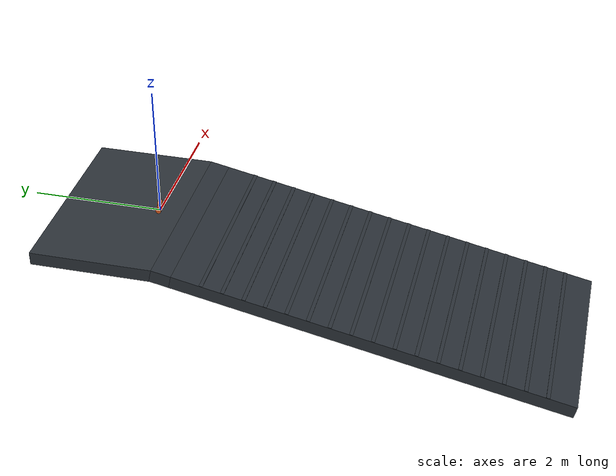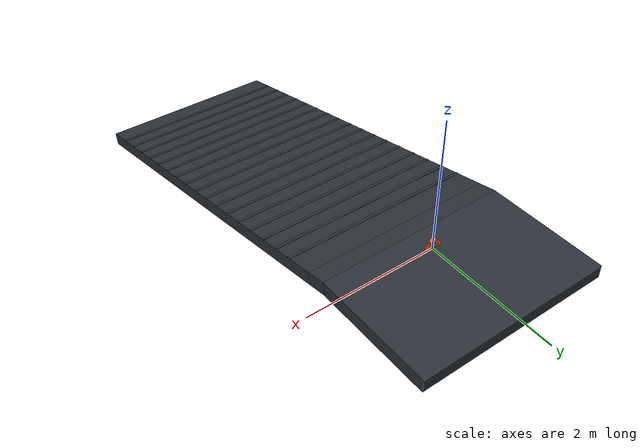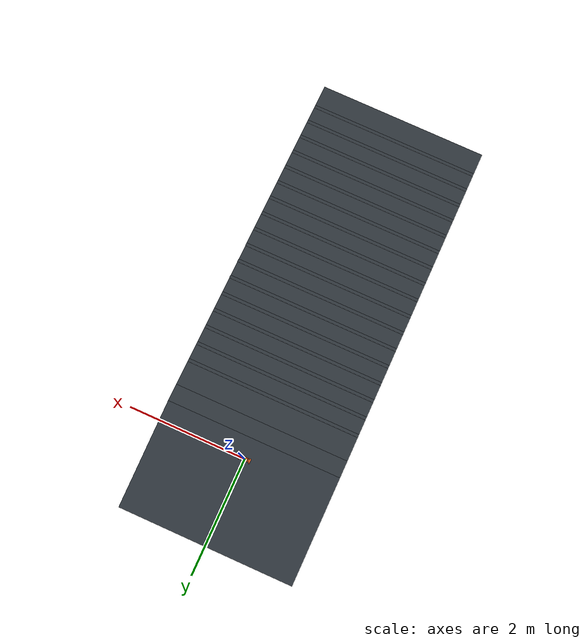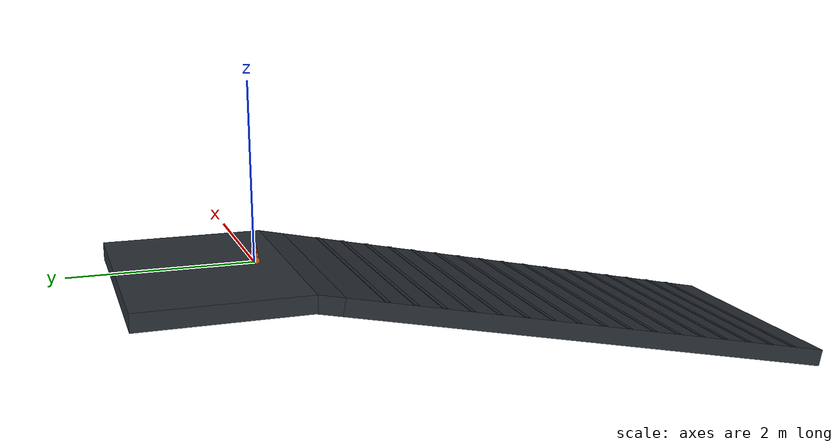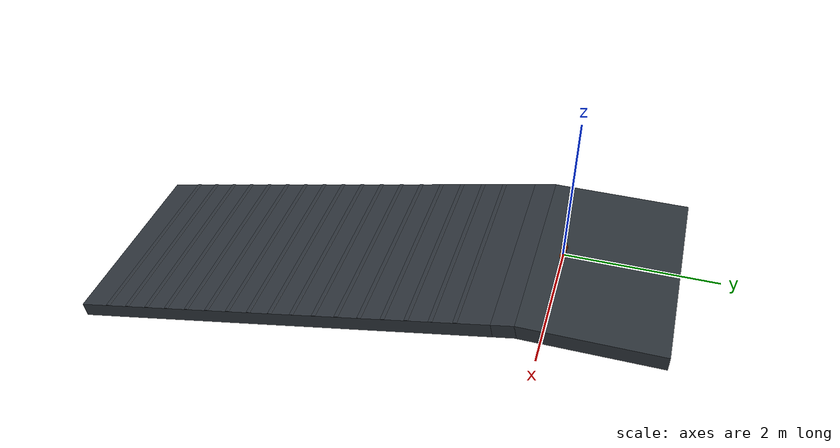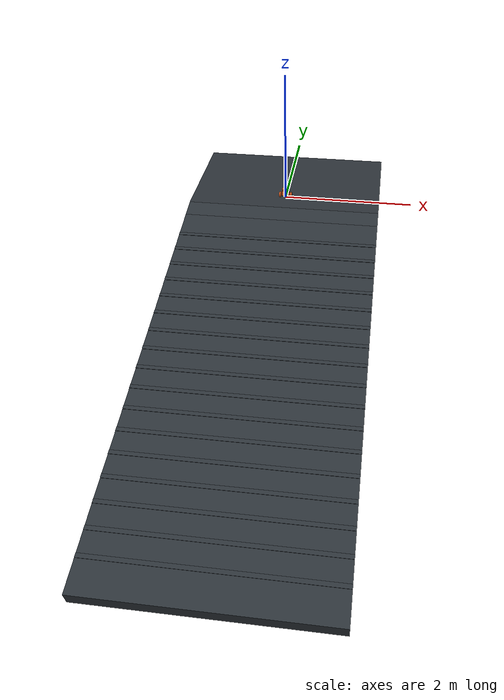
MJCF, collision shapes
<mujoco model="Stage4B rbase_ep_022_train_m12p0">
  <compiler angle="radian" meshdir="../../../../assets/upstream_local" />
  <option timestep="0.001" integrator="implicitfast" gravity="0 0 -9.81" />
  <statistic center="0 0 0.05" extent="0.28" />
  <default>
    <default class="visual">
      <geom contype="0" conaffinity="0" group="2" />
    </default>
    <default class="collision">
      <geom group="3" rgba="0.85 0.35 0.12 0.25" solref="0.005 1" solimp="0.9 0.95 0.001" />
    </default>
  </default>
  <asset>
    <texture name="ground_tex" type="2d" builtin="checker" rgb1="0.22 0.25 0.28" rgb2="0.12 0.14 0.16" width="256" height="256" />
    <material name="ground_mat" texture="ground_tex" texrepeat="4 4" reflectance="0.15" />
    <mesh name="main_frame_mesh" file="main_frame.stl" scale="0.001 0.001 0.001" />
    <mesh name="wheel_base_mesh" file="wheel_base.stl" scale="0.001 0.001 0.001" />
    <mesh name="cover_mesh" file="cover.stl" scale="0.001 0.001 0.001" />
    <mesh name="motor_left_mesh" file="motor_left.stl" scale="0.001 0.001 0.001" />
    <mesh name="motor_right_mesh" file="motor_right.stl" scale="0.001 0.001 0.001" />
    <mesh name="mc33926_mesh" file="mc33926.stl" scale="0.001 0.001 0.001" />
    <mesh name="wheel_mesh" file="wheel.stl" scale="0.001 0.001 0.001" />
    <mesh name="adapter_left_mesh" file="adapter_left.stl" scale="0.001 0.001 0.001" />
    <mesh name="adapter_right_mesh" file="adapter_right.stl" scale="0.001 0.001 0.001" />
  </asset>
  <worldbody>
    <light pos="0 -0.5 0.8" dir="0 0.6 -1" diffuse="0.8 0.8 0.8" />
    <geom name="terrain_flat" type="box" pos="0 0.575 -0.1" size="1.5 0.925 0.1" material="ground_mat" friction="1 0.005 0.0001" condim="3" />
    <geom name="terrain_transition" type="box" pos="0 -0.475930971028 -0.129001513696" euler="0.209439510239 0 0" size="1.5 0.15 0.1" material="ground_mat" friction="1 0.005 0.0001" condim="3" />
    <geom name="terrain_constant_grade" type="box" pos="0 -3.55709591334 -0.783923339772" euler="0.209439510239 0 0" size="1.5 3 0.1" material="ground_mat" friction="1 0.005 0.0001" condim="3" />
    <geom name="terrain_rough_00" type="box" pos="0 -1.08423443562 -0.152999325311" euler="0.209439510239 0 0" size="1.5 0.0275 0.003" material="ground_mat" friction="1 0.005 0.0001" condim="3" />
    <geom name="terrain_rough_01" type="box" pos="0 -1.39724166786 -0.219531066373" euler="0.209439510239 0 0" size="1.5 0.0275 0.003" material="ground_mat" friction="1 0.005 0.0001" condim="3" />
    <geom name="terrain_rough_02" type="box" pos="0 -1.71024890009 -0.286062807434" euler="0.209439510239 0 0" size="1.5 0.0275 0.003" material="ground_mat" friction="1 0.005 0.0001" condim="3" />
    <geom name="terrain_rough_03" type="box" pos="0 -2.02325613233 -0.352594548496" euler="0.209439510239 0 0" size="1.5 0.0275 0.003" material="ground_mat" friction="1 0.005 0.0001" condim="3" />
    <geom name="terrain_rough_04" type="box" pos="0 -2.33626336456 -0.419126289558" euler="0.209439510239 0 0" size="1.5 0.0275 0.003" material="ground_mat" friction="1 0.005 0.0001" condim="3" />
    <geom name="terrain_rough_05" type="box" pos="0 -2.6492705968 -0.48565803062" euler="0.209439510239 0 0" size="1.5 0.0275 0.003" material="ground_mat" friction="1 0.005 0.0001" condim="3" />
    <geom name="terrain_rough_06" type="box" pos="0 -2.96227782903 -0.552189771681" euler="0.209439510239 0 0" size="1.5 0.0275 0.003" material="ground_mat" friction="1 0.005 0.0001" condim="3" />
    <geom name="terrain_rough_07" type="box" pos="0 -3.27528506127 -0.618721512743" euler="0.209439510239 0 0" size="1.5 0.0275 0.003" material="ground_mat" friction="1 0.005 0.0001" condim="3" />
    <geom name="terrain_rough_08" type="box" pos="0 -3.5882922935 -0.685253253805" euler="0.209439510239 0 0" size="1.5 0.0275 0.003" material="ground_mat" friction="1 0.005 0.0001" condim="3" />
    <geom name="terrain_rough_09" type="box" pos="0 -3.90129952574 -0.751784994866" euler="0.209439510239 0 0" size="1.5 0.0275 0.003" material="ground_mat" friction="1 0.005 0.0001" condim="3" />
    <geom name="terrain_rough_10" type="box" pos="0 -4.21430675797 -0.818316735928" euler="0.209439510239 0 0" size="1.5 0.0275 0.003" material="ground_mat" friction="1 0.005 0.0001" condim="3" />
    <geom name="terrain_rough_11" type="box" pos="0 -4.52731399021 -0.88484847699" euler="0.209439510239 0 0" size="1.5 0.0275 0.003" material="ground_mat" friction="1 0.005 0.0001" condim="3" />
    <geom name="terrain_rough_12" type="box" pos="0 -4.84032122244 -0.951380218051" euler="0.209439510239 0 0" size="1.5 0.0275 0.003" material="ground_mat" friction="1 0.005 0.0001" condim="3" />
    <geom name="terrain_rough_13" type="box" pos="0 -5.15332845468 -1.01791195911" euler="0.209439510239 0 0" size="1.5 0.0275 0.003" material="ground_mat" friction="1 0.005 0.0001" condim="3" />
    <geom name="terrain_rough_14" type="box" pos="0 -5.46633568691 -1.08444370017" euler="0.209439510239 0 0" size="1.5 0.0275 0.003" material="ground_mat" friction="1 0.005 0.0001" condim="3" />
    <geom name="terrain_rough_15" type="box" pos="0 -5.77934291915 -1.15097544124" euler="0.209439510239 0 0" size="1.5 0.0275 0.003" material="ground_mat" friction="1 0.005 0.0001" condim="3" />
    <geom name="terrain_rough_16" type="box" pos="0 -6.09235015138 -1.2175071823" euler="0.209439510239 0 0" size="1.5 0.0275 0.003" material="ground_mat" friction="1 0.005 0.0001" condim="3" />
    <body name="chassis" pos="0 0 0.043">
      <freejoint name="root" />
      <inertial pos="0.0001592717873 -0.001394466535 0.03368627387" mass="0.8173706489" fullinertia="0.0009508052638 0.001636345835 0.0009938057434 -1.163464906e-07 -4.840496598e-06 3.454944565e-05" />
      <geom name="main_frame_visual" class="visual" type="mesh" mesh="main_frame_mesh" rgba="0.12 0.42 0.72 1" />
      <geom name="wheel_base_visual" class="visual" type="mesh" mesh="wheel_base_mesh" rgba="0.95 0.50 0.10 1" />
      <geom name="cover_visual" class="visual" type="mesh" mesh="cover_mesh" rgba="0.18 0.72 0.32 0.72" />
      <geom name="motor_left_visual" class="visual" type="mesh" mesh="motor_left_mesh" rgba="0.45 0.47 0.50 1" />
      <geom name="motor_right_visual" class="visual" type="mesh" mesh="motor_right_mesh" rgba="0.45 0.47 0.50 1" />
      <geom name="mc33926_visual" class="visual" type="mesh" mesh="mc33926_mesh" rgba="0.08 0.36 0.18 1" />
      <geom name="battery_1_visual" class="visual" type="box" pos="0 -0.012 0.038" size="0.035 0.007 0.025" rgba="0.15 0.25 0.75 1" />
      <geom name="battery_2_visual" class="visual" type="box" pos="0 0.012 0.038" size="0.035 0.007 0.025" rgba="0.15 0.25 0.75 1" />
      <geom name="electronics_lump_visual" class="visual" type="box" pos="0 -0.024 0.067" size="0.035 0.006 0.0425" rgba="0.10 0.42 0.20 0.65" />
      <geom name="wheel_base_collision" class="collision" type="box" pos="0 0.0005 0.0042" size="0.074 0.0201 0.0198" />
      <geom name="lower_chassis_collision" class="collision" type="box" pos="0.001 -0.0015 0.038" size="0.0595 0.0325 0.038" />
      <geom name="upper_chassis_collision" class="collision" type="capsule" fromto="-0.024 -0.0015 0.096 0.026 -0.0015 0.096" size="0.033" />
      <site name="imu_site" type="box" pos="0 0 0.020" quat="1 0 0 0" size="0.004 0.003 0.001" rgba="1 0.15 0.05 1" />
      <body name="left_wheel" pos="-0.0885 0 0">
        <joint name="left_wheel_hinge" type="hinge" axis="1 0 0" damping="0.002" frictionloss="0.002" />
        <inertial pos="0.001407549168 -2.310217342e-08 4.024972882e-05" mass="0.1051" fullinertia="8.559060347e-05 4.760138372e-05 4.763051958e-05 2.677568832e-11 -3.525425309e-08 -1.463149106e-11" />
        <geom name="left_wheel_visual" class="visual" type="mesh" mesh="wheel_mesh" rgba="0.04 0.05 0.06 1" />
        <geom name="left_adapter_visual" class="visual" type="mesh" mesh="adapter_left_mesh" rgba="0.12 0.48 0.82 1" />
        <geom name="left_wheel_collision" class="collision" type="cylinder" size="0.042 0.012" quat="0.7071067812 0 0.7071067812 0" friction="1 0.005 0.0001" />
      </body>
      <body name="right_wheel" pos="0.0885 0 0">
        <joint name="right_wheel_hinge" type="hinge" axis="1 0 0" damping="0.002" frictionloss="0.002" />
        <inertial pos="-0.001407437868 -2.310217342e-08 -4.019113045e-05" mass="0.1051" fullinertia="8.559060397e-05 4.760141714e-05 4.763055251e-05 -2.601653908e-11 -3.526339188e-08 1.57007511e-11" />
        <geom name="right_wheel_visual" class="visual" type="mesh" mesh="wheel_mesh" rgba="0.04 0.05 0.06 1" />
        <geom name="right_adapter_visual" class="visual" type="mesh" mesh="adapter_right_mesh" rgba="0.12 0.48 0.82 1" />
        <geom name="right_wheel_collision" class="collision" type="cylinder" size="0.042 0.012" quat="0.7071067812 0 0.7071067812 0" friction="1 0.005 0.0001" />
      </body>
    </body>
  </worldbody>
  <actuator>
    <motor name="left_wheel_torque" joint="left_wheel_hinge" gear="1" ctrllimited="true" ctrlrange="-0.63 0.63" forcelimited="true" forcerange="-0.63 0.63" />
    <motor name="right_wheel_torque" joint="right_wheel_hinge" gear="1" ctrllimited="true" ctrlrange="-0.63 0.63" forcelimited="true" forcerange="-0.63 0.63" />
  </actuator>
  <sensor>
    <accelerometer name="imu_accelerometer" site="imu_site" />
    <gyro name="imu_gyro" site="imu_site" />
    <jointpos name="left_wheel_angle" joint="left_wheel_hinge" />
    <jointpos name="right_wheel_angle" joint="right_wheel_hinge" />
  </sensor>
  <keyframe>
    <key name="upright" qpos="0 0 0.043 1 0 0 0 0 0" />
  </keyframe>
</mujoco>
